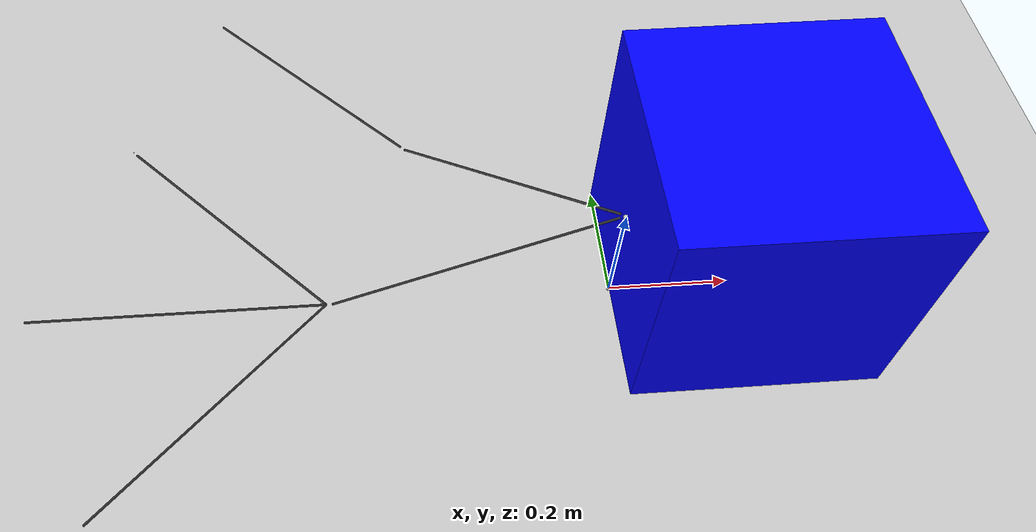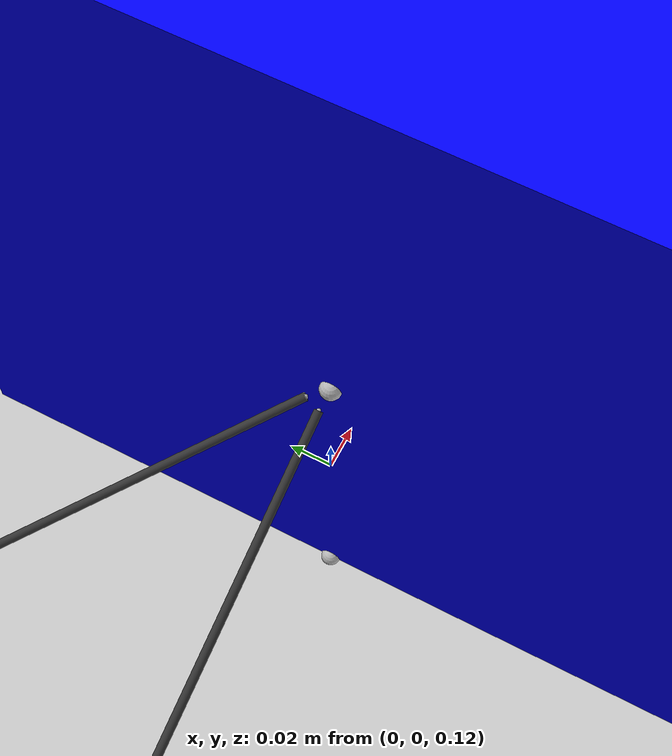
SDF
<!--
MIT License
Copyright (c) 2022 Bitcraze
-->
<sdf version="1.6">
 <world name="crazyflie_world">
  <physics name="1ms" type="ignored">
   <max_step_size>0.0005</max_step_size>
   <real_time_factor>1.0</real_time_factor>
  </physics>
  <plugin filename="gz-sim-physics-system" name="gz::sim::systems::Physics"/>
  <plugin filename="gz-sim-user-commands-system" name="gz::sim::systems::UserCommands"/>
  <plugin filename="gz-sim-scene-broadcaster-system" name="gz::sim::systems::SceneBroadcaster"/>
  <plugin filename="gz-sim-sensors-system" name="gz::sim::systems::Sensors">
   <render_engine>ogre2</render_engine>
  </plugin>
  <light type="directional" name="sun">
   <pose>0 0 10 0 0 0</pose>
   <diffuse>0.8 0.8 0.8 1</diffuse>
   <specular>0.2 0.2 0.2 1</specular>
   <attenuation>
    <range>1000</range>
    <constant>0.9</constant>
    <linear>0.01</linear>
    <quadratic>0.001</quadratic>
   </attenuation>
   <direction>-0.5 0.1 -0.9</direction>
  </light>
  <model name="ground_plane">
   <static>true</static>
   <link name="link">
    <collision name="collision">
     <geometry><plane><normal>0 0 1</normal><size>100 100</size></plane></geometry>
    </collision>
    <visual name="visual">
     <geometry><plane><normal>0 0 1</normal><size>100 100</size></plane></geometry>
     <material>
      <ambient>0.8 0.8 0.8 1</ambient>
      <diffuse>0.8 0.8 0.8 1</diffuse>
      <specular>0.8 0.8 0.8 1</specular>
     </material>
    </visual>
   </link>
  </model>
  <include><uri>model://load_large</uri><name>the_load</name><pose>0.2 0 0 0 0 0</pose></include>
  <include><uri>model://segment_large</uri><name>segment_2</name><pose>-0.24 0 0.1 0 -0.41 0</pose></include>
  <joint name="cable_2_to_load" type="ball">
   <pose relative_to="segment_2::segment_end">0 0 0 0 0 0</pose>
   <parent>the_load::x_middle_hook</parent>
   <child>segment_2::segment_end</child>
   <axis><xyz>0 1 0</xyz></axis>
  </joint>
  <include><uri>model://segment_large</uri><name>segment_1</name><pose>-0.73 0 0 0 0 0</pose></include>
  <joint name="segment_1_to_2" type="ball">
   <pose relative_to="segment_1::segment_end">0 0 0 0 0 0</pose>
   <parent>segment_2::segment_start</parent>
   <child>segment_1::segment_end</child>
   <axis><xyz>0 1 0</xyz></axis>
  </joint>
  <joint name="drone_to_cable_01" type="ball">
   <pose relative_to="crazyflie_01::hook_link">0 0 0 0 0 0</pose>
   <parent>segment_1::segment_start</parent>
   <child>crazyflie_01::hook_link</child>
   <axis><xyz>0 1 0</xyz></axis>
  </joint>
  <include>
   <uri>model://segment_large</uri>
   <name>segment2_2</name>
   <pose>-0.1697 0.1697 0.1 0 -0.41 -0.785</pose>
  </include>
  <joint name="cable2_2_to_load" type="ball">
   <pose relative_to="segment2_2::segment_end">0 0 0 0 0 0</pose>
   <parent>the_load::x_middle_hook</parent>
   <child>segment2_2::segment_end</child>
   <axis><xyz>0 1 0</xyz></axis>
  </joint>
  <include>
   <uri>model://segment_large</uri>
   <name>segment2_1</name>
   <pose>-0.516 0.516 0 0 0 -0.785</pose>
  </include>
  <joint name="segment2_1_to_2" type="ball">
   <pose relative_to="segment2_1::segment_end">0 0 0 0 0 0</pose>
   <parent>segment2_2::segment_start</parent>
   <child>segment2_1::segment_end</child>
   <axis><xyz>0 1 0</xyz></axis>
  </joint>
  <joint name="drone2_to_cable_01" type="ball">
   <pose relative_to="crazyflie_02::hook_link">0 0 0 0 0 0</pose>
   <parent>segment2_1::segment_start</parent>
   <child>crazyflie_02::hook_link</child>
   <axis><xyz>0 1 0</xyz></axis>
  </joint>
  <include><uri>model://segment_large</uri><name>segment3_2</name><pose>-0.24 0 0.1 0 -0.41 0</pose></include>
  <joint name="cable3_2_to_load" type="ball">
   <pose relative_to="segment3_2::segment_end">0 0 0 0 0 0</pose>
   <parent>the_load::x_middle_hook</parent>
   <child>segment3_2::segment_end</child>
   <axis><xyz>0 1 0</xyz></axis>
  </joint>
  <include>
   <uri>model://segment_large</uri>
   <name>segment3_1</name>
   <pose>-0.6567 -0.1767 0 0 0 0.785</pose>
  </include>
  <joint name="segment3_1_to_2" type="ball">
   <pose relative_to="segment3_1::segment_end">0 0 0 0 0 0</pose>
   <parent>segment3_2::segment_start</parent>
   <child>segment3_1::segment_end</child>
   <axis><xyz>0 1 0</xyz></axis>
  </joint>
  <joint name="drone3_to_cable_01" type="ball">
   <pose relative_to="crazyflie_03::hook_link">0 0 0 0 0 0</pose>
   <parent>segment3_1::segment_start</parent>
   <child>crazyflie_03::hook_link</child>
   <axis><xyz>0 1 0</xyz></axis>
  </joint>
  <include><uri>model://segment_large</uri><name>segment4_2</name><pose>-0.24 0 0.1 0 -0.41 0</pose></include>
  <joint name="cable4_2_to_load" type="ball">
   <pose relative_to="segment4_2::segment_end">0 0 0 0 0 0</pose>
   <parent>the_load::x_middle_detacheable_hook</parent>
   <child>segment4_2::segment_end</child>
   <axis><xyz>0 1 0</xyz></axis>
  </joint>
  <include>
   <uri>model://segment_large</uri>
   <name>segment4_1</name>
   <pose>-0.6567 0.1767 0 0 0 -0.785</pose>
  </include>
  <joint name="segment4_1_to_1attp" type="ball">
   <pose relative_to="seg4_1_attp::segment_start">0 0 0 0 0 0</pose>
   <parent>segment4_1::segment_start</parent>
   <child>seg4_1_attp::segment_start</child>
   <axis><xyz>0 1 0</xyz></axis>
  </joint>
  <model name="seg4_1_attp">
   <link name="segment_start">
    <pose>-0.8406 0.3606 0 0 0 0</pose>
    <inertial><mass>1e-9</mass><inertia><ixx>1e-9</ixx><iyy>1e-9</iyy><izz>1e-9</izz></inertia></inertial>
    <visual name="start_visual"><geometry><sphere><radius>0.001</radius></sphere></geometry></visual>
    <collision name="start_collision"><geometry><sphere><radius>0.001</radius></sphere></geometry></collision>
   </link>
   <plugin filename="gz-sim-detachable-joint-system" name="gz::sim::systems::DetachableJoint">
    <parent_link>segment_start</parent_link>
    <child_model>crazyflie_04</child_model>
    <joint_name>detached_joint</joint_name>
    <child_link>hook_link</child_link>
    <detach_topic>/drone/detach</detach_topic>
   </plugin>
  </model>
  <joint name="segment4_1_to_2" type="ball">
   <pose relative_to="segment4_1::segment_end">0 0 0 0 0 0</pose>
   <parent>segment4_2::segment_start</parent>
   <child>segment4_1::segment_end</child>
   <axis><xyz>0 1 0</xyz></axis>
  </joint>
 </world>
</sdf>

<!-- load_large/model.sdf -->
<sdf version="1.8">
<model name="load_large">
  <link name="box_body">
    <pose>0 0 0.2 0 0 0</pose>
      <inertial> <!--inertial properties of the link mass, inertia matix-->
        <mass>0.03</mass>
        <inertia>
          <ixx>0.000798</ixx>
          <ixy>0</ixy>
          <ixz>0</ixz>
          <iyy>0.000798</iyy>
          <iyz>0</iyz>
          <izz>0.000798</izz>
        </inertia>
      </inertial>
      <visual name='visual'>
        <geometry>
          <box>
            <size>0.4 0.4 0.4</size>
          </box>
        </geometry>
          <!--let's add color to our link-->
          <material>
            <ambient>0.0 0.0 1.0 1</ambient>
            <diffuse>0.0 0.0 1.0 1</diffuse>
            <specular>0.0 0.0 1.0 1</specular>
          </material>
      </visual>
      <collision name='collision'>
        <geometry>
          <box>
            <size>0.4 0.4 0.4</size>
          </box>
        </geometry>
        <surface>
          <friction>
            <ode>
              <mu> 0.3 </mu>
            </ode>
          </friction>
        </surface>
      </collision>
    </link>
  <link name="x_hook">
    <pose>-0.2 0 0 0 0 0</pose>
    <inertial>
      <mass>0.00001</mass>
        <inertia>
          <ixx>1e-9</ixx>
          <ixy>0</ixy>
          <ixz>0</ixz>
          <iyy>1e-9</iyy>
          <iyz>0</iyz>
          <izz>1e-9</izz>
        </inertia>
    </inertial>
    <visual name="hook_visual"><geometry><sphere><radius>0.005</radius></sphere></geometry></visual>
    <collision name="hook_collision"><geometry><sphere><radius>0.005</radius></sphere></geometry></collision>
  </link>
  <joint name="box_to_hook_x_joint" type="fixed">
    <parent>box_body</parent>
    <child>x_hook</child>
  </joint>

  <link name="x_middle_hook">
    <pose>-0.2 0 0.2 0 0 0</pose>
    <inertial>
      <mass>0.00001</mass>
        <inertia>
          <ixx>1e-9</ixx>
          <ixy>0</ixy>
          <ixz>0</ixz>
          <iyy>1e-9</iyy>
          <iyz>0</iyz>
          <izz>1e-9</izz>
        </inertia>
    </inertial>
    <visual name="hook_visual"><geometry><sphere><radius>0.005</radius></sphere></geometry></visual>
    <collision name="hook_collision"><geometry><sphere><radius>0.005</radius></sphere></geometry></collision>
  </link>
  <joint name="box_to_middle_hook_x_joint" type="fixed">
    <parent>box_body</parent>
    <child>x_middle_hook</child>
  </joint>

  <link name="x_middle_detacheable_hook">
    <pose>-0.2 0 0.2 0 0 0</pose>
    <inertial>
      <mass>0.00001</mass>
        <inertia>
          <ixx>1e-9</ixx>
          <ixy>0</ixy>
          <ixz>0</ixz>
          <iyy>1e-9</iyy>
          <iyz>0</iyz>
          <izz>1e-9</izz>
        </inertia>
    </inertial>
    <visual name="hook_visual"><geometry><sphere><radius>0.005</radius></sphere></geometry></visual>
    <collision name="hook_collision"><geometry><sphere><radius>0.005</radius></sphere></geometry></collision>
  </link>
  <plugin filename="gz-sim-detachable-joint-system" name="gz::sim::systems::DetachableJoint">
       <parent_link>box_body</parent_link>
       <child_model>__model__</child_model>
       <joint_name>detached_joint </joint_name>
       <child_link>x_middle_detacheable_hook</child_link>
       <detach_topic>/load/detach</detach_topic>
  </plugin>

  <link name="y_hook">
    <pose>0 0.2 0 0 0 0</pose>
    <inertial>
      <mass>0.00001</mass>
        <inertia>
          <ixx>1e-9</ixx>
          <ixy>0</ixy>
          <ixz>0</ixz>
          <iyy>1e-9</iyy>
          <iyz>0</iyz>
          <izz>1e-9</izz>
        </inertia>
    </inertial>
    <visual name="hook_visual"><geometry><sphere><radius>0.005</radius></sphere></geometry></visual>
    <collision name="hook_collision"><geometry><sphere><radius>0.005</radius></sphere></geometry></collision>
  </link>
  <joint name="box_to_hook_y_joint" type="fixed">
    <parent>box_body</parent>
    <child>y_hook</child>
  </joint>

  <link name="y_middle_hook">
    <pose>0 0.2 0.2 0 0 0</pose>
    <inertial>
      <mass>0.00001</mass>
        <inertia>
          <ixx>1e-9</ixx>
          <ixy>0</ixy>
          <ixz>0</ixz>
          <iyy>1e-9</iyy>
          <iyz>0</iyz>
          <izz>1e-9</izz>
        </inertia>
    </inertial>
    <visual name="hook_visual"><geometry><sphere><radius>0.005</radius></sphere></geometry></visual>
    <collision name="hook_collision"><geometry><sphere><radius>0.005</radius></sphere></geometry></collision>
  </link>
  <joint name="box_to_middle_hook_y_joint" type="fixed">
    <parent>box_body</parent>
    <child>y_middle_hook</child>
  </joint>

  <plugin
      filename="gz-sim-odometry-publisher-system"
      name="gz::sim::systems::OdometryPublisher">
      <odom_frame>odom</odom_frame>
      <dimensions>3</dimensions>
    </plugin>
</model>
</sdf>

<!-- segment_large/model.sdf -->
<sdf version="1.8">
  <model name="segment">
    <link name="segment_link">
      <inertial>
        <mass>0.001</mass>
        <pose>0 0 0 0 1.5708 0</pose>
        <inertia>
            <ixx>1e-7</ixx>
            <iyy>1e-7</iyy>
            <izz>1e-7</izz>
        </inertia>
      </inertial>
      <visual name="segment_visual">
        <pose>0 0 0 0 1.5708 0</pose>
        <geometry>
          <cylinder>
            <radius>0.002</radius>
            <length>0.5</length> </cylinder>
        </geometry>
        <material>
          <ambient>0.2 0.2 0.2 1</ambient>
          <diffuse>0.2 0.2 0.2 1</diffuse>
          <specular>0.0 0.0 0.0 1</specular>
          <emissive>0.0 0.0 0.0 1</emissive>
        </material>
      </visual>
    </link>
    <link name="segment_start">
        <pose>-0.25 0 0 0 0 0</pose>
        <inertial>
          <mass>1e-9</mass>
          <inertia>
            <ixx>1e-9</ixx>
            <iyy>1e-9</iyy>
            <izz>1e-9</izz>
        </inertia>
        </inertial>
        <visual name="start_visual"><geometry><sphere><radius>0.001</radius></sphere></geometry></visual>
        <collision name="start_collision"><geometry><sphere><radius>0.001</radius></sphere></geometry></collision>
    </link>
    <joint name="start_joint" type="fixed">
        <parent>segment_link</parent>
        <child>segment_start</child>
    </joint>
    <link name="segment_end">
        <pose>0.25 0 0 0 0 0</pose>
        <inertial>
          <mass>1e-9</mass>
          <inertia>
            <ixx>1e-9</ixx>
            <iyy>1e-9</iyy>
            <izz>1e-9</izz>
        </inertia>
        </inertial>
        <visual name="end_visual"><geometry><sphere><radius>0.001</radius></sphere></geometry></visual>
        <collision name="end_collision"><geometry><sphere><radius>0.001</radius></sphere></geometry></collision>
    </link>
    <joint name="end_joint" type="fixed">
        <parent>segment_end</parent>
        <child>segment_link</child>
    </joint>
  </model>
</sdf>
